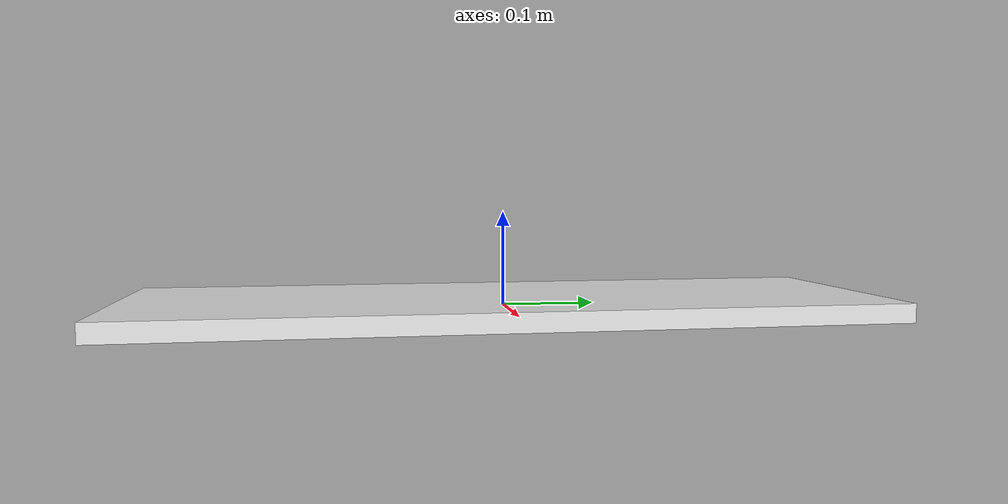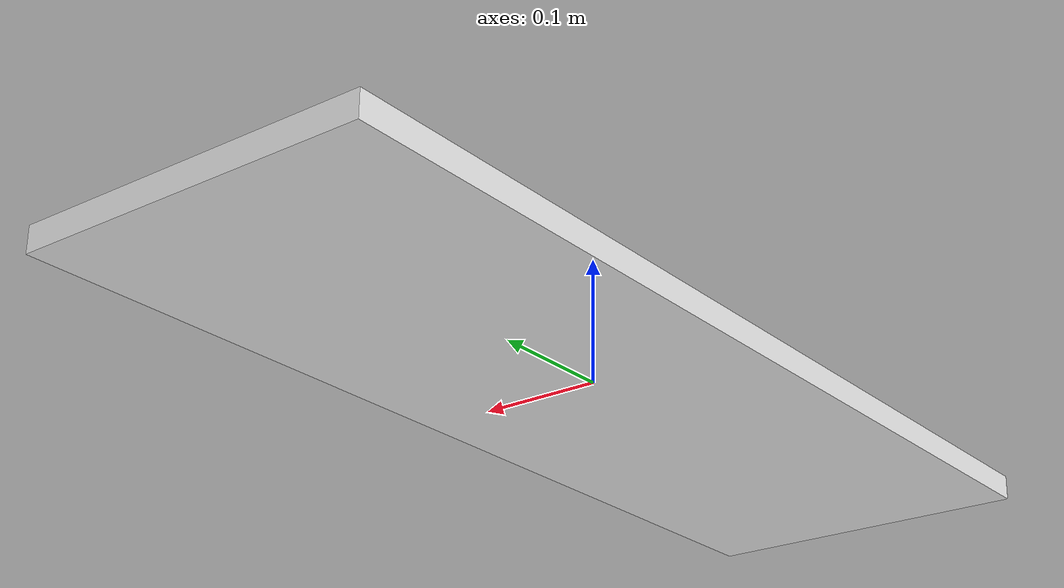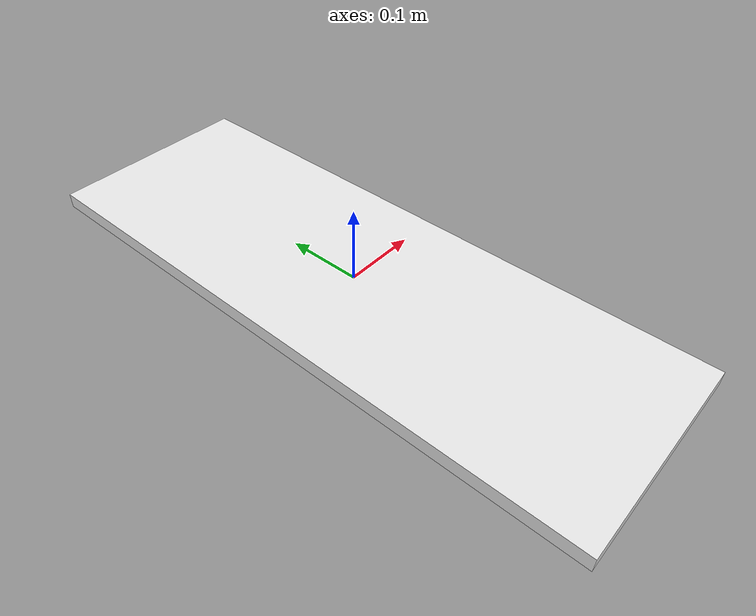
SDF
<?xml version="1.0"?>
<sdf version="1.6">
  <model name="rgo2015/cabinet/shelf">
    <link name="1_link">
      <collision name="1_col">
        <geometry>
          <box>
            <size>0.28 0.8 0.02</size>
          </box>
        </geometry>
      </collision>
      <visual name="1_vis">
        <geometry>
          <box>
            <size>0.28 0.8 0.02</size>
          </box>
        </geometry>
        <material>
          <ambient>0.9 0.9 0.9 1</ambient>
        </material>
      </visual>
      <pose>0.0 0.0 0.0 0 0 0</pose>
    </link>
    <link name="in_front_of">
      <virtual_volume name="in_front_of_vv">
        <geometry>
          <box>
            <size>0.1 0.8 1</size>
          </box>
        </geometry>
        <pose>0.84 0.0 0.5 0 0 0</pose>
      </virtual_volume>
    </link>
    <static>true</static>
  </model>
</sdf>
